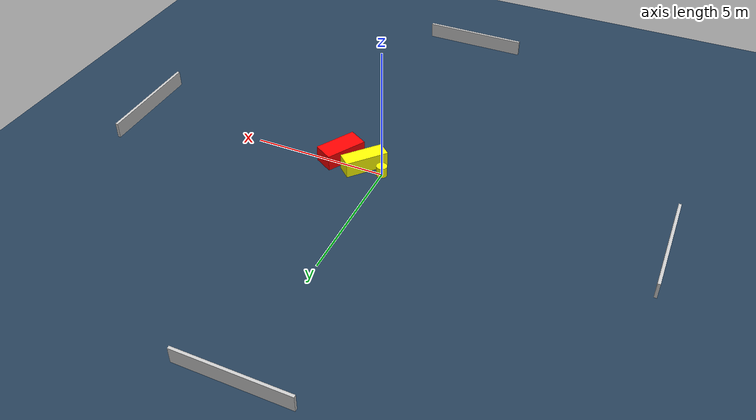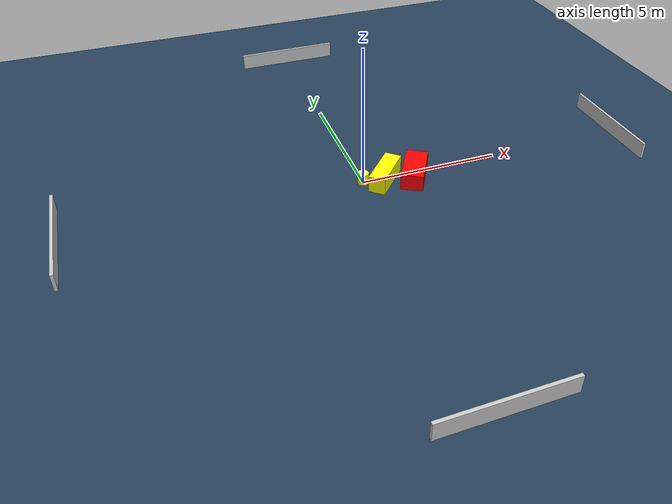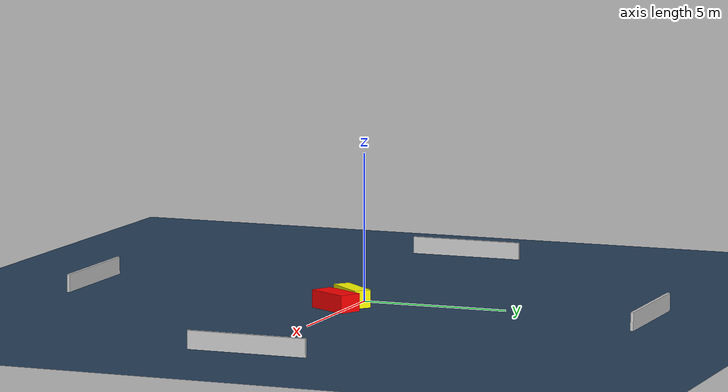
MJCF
<?xml version="1.0" ?>
<mujoco model="generated_environment">
  <option timestep="0.01" integrator="RK4" cone="elliptic"/>
  <default>
    <geom density="1"/>
  </default>
  <asset>
    <texture builtin="gradient" height="3072" name="skybox" rgb1="0.3 0.5 0.7" rgb2="0 0 0" type="skybox" width="512"/>
    <texture builtin="checker" height="300" name="groundplane" rgb1="0.2 0.3 0.4" rgb2="0.1 0.2 0.3" type="2d" width="300"/>
    <material name="groundplane" reflectance="0.2" texrepeat="5 5" texture="groundplane"/>
  </asset>
  <worldbody>
    <light dir="0 0 -1" directional="true" pos="0 0 1.5"/>
    <geom condim="3" friction="0.5 0.005 0.001" material="groundplane" name="floor" pos="0 0 0" size="0 0 0.05" type="plane"/>
    <body name="walls">
      <geom name="wall_1" condim="4" pos="-10.0 0.0 0.3" rgba="0.800000011920929 0.800000011920929 0.800000011920929 1.0" size="0.05 2.0 0.3" type="box"/>
      <geom name="wall_2" condim="4" pos="10.0 0.0 0.3" rgba="0.800000011920929 0.800000011920929 0.800000011920929 1.0" size="0.05 2.0 0.3" type="box"/>
      <geom name="wall_3" condim="4" pos="0.0 -10.0 0.3" rgba="0.800000011920929 0.800000011920929 0.800000011920929 1.0" size="2.0 0.05 0.3" type="box"/>
      <geom name="wall_4" condim="4" pos="0.0 10.0 0.3" rgba="0.800000011920929 0.800000011920929 0.800000011920929 1.0" size="2.0 0.05 0.3" type="box"/>
    </body>
    <body name="robot">
      <joint name="joint_x" type="slide" pos="0 0 0" axis="1 0 0"/>
      <joint name="joint_y" type="slide" pos="0 0 0" axis="0 1 0"/>
      <geom name="robot" type="cylinder" pos="0.0 0.0 0.2" size="0.2 0.2 0.0" mass="5.0" friction="1.0 0.005 0.0001" condim="4" rgba="1.0 1.0 0.0 1.0"/>
    </body>
    <body name="obstacle_1_movable">
      <geom name="obstacle_1_movable" condim="4" pos="0.7527695394322131 -0.1415658806961513 0.3" euler="0 0 138.18592114993464" friction="0.0 0.005 0.001" rgba="1.0 1.0 0.0 1.0" size="0.28952862681194397 0.7999082570983123 0.3" type="box" mass="0.1"/>
      <joint type="free"/>
    </body>
    <body name="obstacle_2_static">
      <geom name="obstacle_2_static" condim="4" pos="1.7739830841096054 -0.3173173094744755 0.3" euler="0 0 60.02284563071206" friction="0.0 0.005 0.001" rgba="1.0 0.0 0.0 1.0" size="0.780463438209902 0.38353862219863555 0.3" type="box"/>
    </body>
  </worldbody>
  <actuator>
    <motor name="actuator_x" joint="joint_x" gear="1" ctrlrange="-1 1"/>
    <motor name="actuator_y" joint="joint_y" gear="1" ctrlrange="-1 1"/>
  </actuator>
</mujoco>
